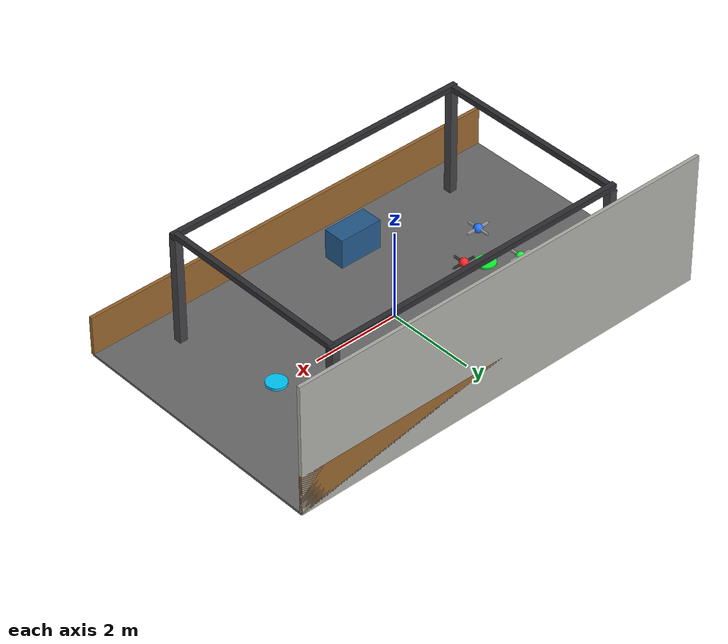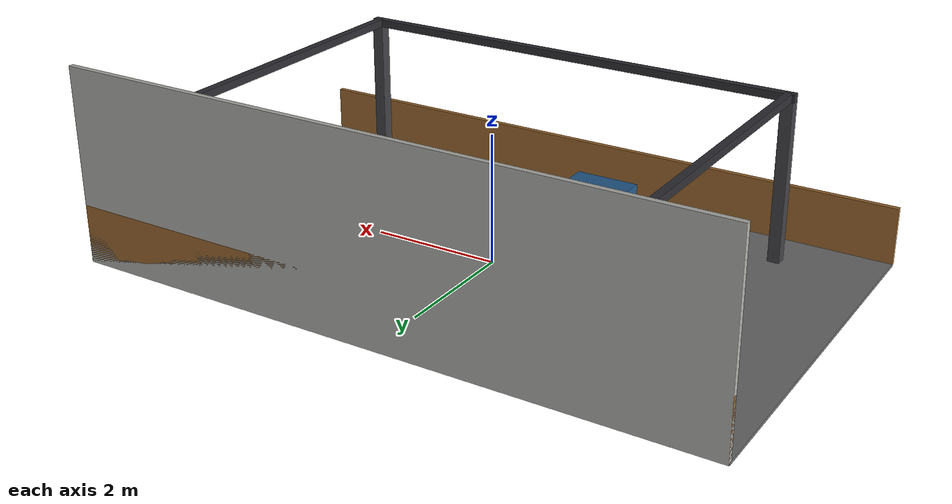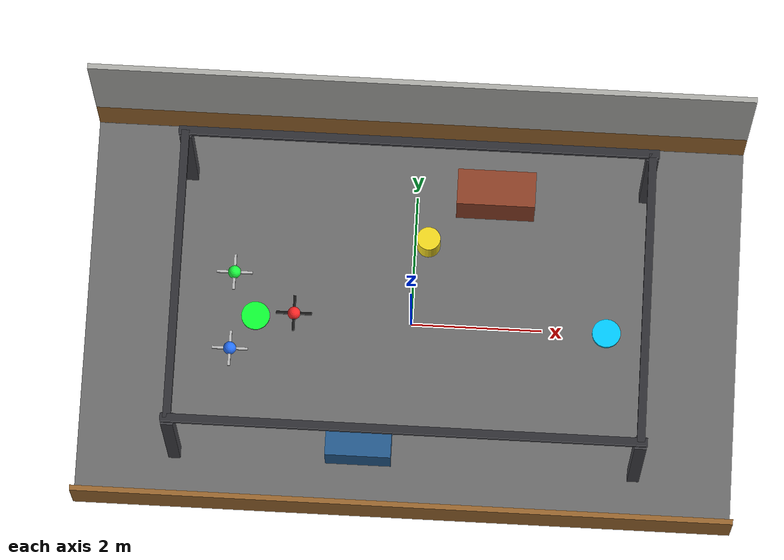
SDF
<?xml version="1.0" ?>
<sdf version="1.9">
  <world name="industrial_uav_validation_world">

    <physics name="1ms" type="ignored">
      <max_step_size>0.001</max_step_size>
      <real_time_factor>1.0</real_time_factor>
    </physics>

    <plugin filename="gz-sim-physics-system" name="gz::sim::systems::Physics"/>
    <plugin filename="gz-sim-user-commands-system" name="gz::sim::systems::UserCommands"/>
    <plugin filename="gz-sim-scene-broadcaster-system" name="gz::sim::systems::SceneBroadcaster"/>

    <!-- Lighting -->
    <light type="directional" name="sun">
      <cast_shadows>true</cast_shadows>
      <pose>0 0 12 0 0 0</pose>
      <diffuse>0.95 0.95 0.95 1</diffuse>
      <specular>0.25 0.25 0.25 1</specular>
      <direction>-0.4 0.3 -0.9</direction>
    </light>

    <light type="point" name="lab_light_1">
      <pose>-2.5 0 5 0 0 0</pose>
      <diffuse>0.9 0.9 0.85 1</diffuse>
      <specular>0.2 0.2 0.2 1</specular>
      <attenuation>
        <range>12</range>
        <constant>0.8</constant>
        <linear>0.05</linear>
        <quadratic>0.01</quadratic>
      </attenuation>
    </light>

    <light type="point" name="lab_light_2">
      <pose>3 0 5 0 0 0</pose>
      <diffuse>0.9 0.9 0.85 1</diffuse>
      <specular>0.2 0.2 0.2 1</specular>
      <attenuation>
        <range>12</range>
        <constant>0.8</constant>
        <linear>0.05</linear>
        <quadratic>0.01</quadratic>
      </attenuation>
    </light>

    <!-- Ground -->
    <model name="floor">
      <static>true</static>
      <link name="link">
        <collision name="collision">
          <geometry>
            <box>
              <size>10 6 0.05</size>
            </box>
          </geometry>
        </collision>
        <visual name="visual">
          <geometry>
            <box>
              <size>10 6 0.05</size>
            </box>
          </geometry>
          <material>
            <ambient>0.38 0.38 0.38 1</ambient>
            <diffuse>0.42 0.42 0.42 1</diffuse>
            <specular>0.08 0.08 0.08 1</specular>
          </material>
        </visual>
      </link>
    </model>

    <!-- Back wall -->
    <model name="back_wall">
      <static>true</static>
      <pose>0 3.0 1.5 0 0 0</pose>
      <link name="link">
        <visual name="visual">
          <geometry>
            <box>
              <size>10 0.08 3.0</size>
            </box>
          </geometry>
          <material>
            <ambient>0.62 0.62 0.60 1</ambient>
            <diffuse>0.68 0.68 0.66 1</diffuse>
          </material>
        </visual>
      </link>
    </model>

    <!-- Side low walls / boundaries -->
    <model name="left_boundary">
      <static>true</static>
      <pose>0 -3.0 0.45 0 0 0</pose>
      <link name="link">
        <visual name="visual">
          <geometry>
            <box>
              <size>10 0.08 0.9</size>
            </box>
          </geometry>
          <material>
            <ambient>0.55 0.36 0.16 1</ambient>
            <diffuse>0.60 0.40 0.18 1</diffuse>
          </material>
        </visual>
      </link>
    </model>

    <model name="right_boundary">
      <static>true</static>
      <pose>0 3.0 0.45 0 0 0</pose>
      <link name="link">
        <visual name="visual">
          <geometry>
            <box>
              <size>10 0.08 0.9</size>
            </box>
          </geometry>
          <material>
            <ambient>0.55 0.36 0.16 1</ambient>
            <diffuse>0.60 0.40 0.18 1</diffuse>
          </material>
        </visual>
      </link>
    </model>

    <!-- Industrial pillars -->
    <model name="pillar_1">
      <static>true</static>
      <pose>-3.5 -2.2 1.25 0 0 0</pose>
      <link name="link">
        <visual name="visual">
          <geometry>
            <box>
              <size>0.18 0.18 2.5</size>
            </box>
          </geometry>
          <material>
            <ambient>0.2 0.2 0.22 1</ambient>
            <diffuse>0.25 0.25 0.27 1</diffuse>
          </material>
        </visual>
      </link>
    </model>

    <model name="pillar_2">
      <static>true</static>
      <pose>-3.5 2.2 1.25 0 0 0</pose>
      <link name="link">
        <visual name="visual">
          <geometry>
            <box>
              <size>0.18 0.18 2.5</size>
            </box>
          </geometry>
          <material>
            <ambient>0.2 0.2 0.22 1</ambient>
            <diffuse>0.25 0.25 0.27 1</diffuse>
          </material>
        </visual>
      </link>
    </model>

    <model name="pillar_3">
      <static>true</static>
      <pose>3.5 -2.2 1.25 0 0 0</pose>
      <link name="link">
        <visual name="visual">
          <geometry>
            <box>
              <size>0.18 0.18 2.5</size>
            </box>
          </geometry>
          <material>
            <ambient>0.2 0.2 0.22 1</ambient>
            <diffuse>0.25 0.25 0.27 1</diffuse>
          </material>
        </visual>
      </link>
    </model>

    <model name="pillar_4">
      <static>true</static>
      <pose>3.5 2.2 1.25 0 0 0</pose>
      <link name="link">
        <visual name="visual">
          <geometry>
            <box>
              <size>0.18 0.18 2.5</size>
            </box>
          </geometry>
          <material>
            <ambient>0.2 0.2 0.22 1</ambient>
            <diffuse>0.25 0.25 0.27 1</diffuse>
          </material>
        </visual>
      </link>
    </model>

    <!-- Overhead frame -->
    <model name="overhead_beam_front">
      <static>true</static>
      <pose>0 -2.2 2.55 0 0 0</pose>
      <link name="link">
        <visual name="visual">
          <geometry>
            <box>
              <size>7.2 0.12 0.12</size>
            </box>
          </geometry>
          <material>
            <ambient>0.12 0.12 0.13 1</ambient>
            <diffuse>0.18 0.18 0.20 1</diffuse>
          </material>
        </visual>
      </link>
    </model>

    <model name="overhead_beam_back">
      <static>true</static>
      <pose>0 2.2 2.55 0 0 0</pose>
      <link name="link">
        <visual name="visual">
          <geometry>
            <box>
              <size>7.2 0.12 0.12</size>
            </box>
          </geometry>
          <material>
            <ambient>0.12 0.12 0.13 1</ambient>
            <diffuse>0.18 0.18 0.20 1</diffuse>
          </material>
        </visual>
      </link>
    </model>

    <model name="overhead_beam_left">
      <static>true</static>
      <pose>-3.5 0 2.55 0 0 0</pose>
      <link name="link">
        <visual name="visual">
          <geometry>
            <box>
              <size>0.12 4.4 0.12</size>
            </box>
          </geometry>
          <material>
            <ambient>0.12 0.12 0.13 1</ambient>
            <diffuse>0.18 0.18 0.20 1</diffuse>
          </material>
        </visual>
      </link>
    </model>

    <model name="overhead_beam_right">
      <static>true</static>
      <pose>3.5 0 2.55 0 0 0</pose>
      <link name="link">
        <visual name="visual">
          <geometry>
            <box>
              <size>0.12 4.4 0.12</size>
            </box>
          </geometry>
          <material>
            <ambient>0.12 0.12 0.13 1</ambient>
            <diffuse>0.18 0.18 0.20 1</diffuse>
          </material>
        </visual>
      </link>
    </model>

    <!-- Equipment / obstacle-like objects away from main flight path -->
    <model name="equipment_box_left">
      <static>true</static>
      <pose>-0.7 -2.0 0.35 0 0 0</pose>
      <link name="link">
        <visual name="visual">
          <geometry>
            <box>
              <size>1.0 0.5 0.7</size>
            </box>
          </geometry>
          <material>
            <ambient>0.12 0.28 0.45 1</ambient>
            <diffuse>0.14 0.35 0.55 1</diffuse>
          </material>
        </visual>
      </link>
    </model>

    <model name="equipment_box_right">
      <static>true</static>
      <pose>1.2 2.0 0.45 0 0 0</pose>
      <link name="link">
        <visual name="visual">
          <geometry>
            <box>
              <size>1.2 0.55 0.9</size>
            </box>
          </geometry>
          <material>
            <ambient>0.45 0.20 0.12 1</ambient>
            <diffuse>0.55 0.25 0.15 1</diffuse>
          </material>
        </visual>
      </link>
    </model>

    <model name="central_low_obstacle_placeholder">
      <static>true</static>
      <pose>0.2 1.25 0.25 0 0 0</pose>
      <link name="link">
        <visual name="visual">
          <geometry>
            <cylinder>
              <radius>0.18</radius>
              <length>0.50</length>
            </cylinder>
          </geometry>
          <material>
            <ambient>0.85 0.75 0.10 1</ambient>
            <diffuse>0.95 0.85 0.12 1</diffuse>
          </material>
        </visual>
      </link>
    </model>

    <!-- Start marker -->
    <model name="start_marker">
      <static>true</static>
      <pose>-2.4 0 0.04 0 0 0</pose>
      <link name="link">
        <visual name="visual">
          <geometry>
            <cylinder>
              <radius>0.22</radius>
              <length>0.04</length>
            </cylinder>
          </geometry>
          <material>
            <ambient>0.05 1.0 0.20 1</ambient>
            <diffuse>0.05 1.0 0.20 1</diffuse>
          </material>
        </visual>
      </link>
    </model>

    <!-- Goal marker -->
    <model name="goal_marker">
      <static>true</static>
      <pose>3.0 0 0.05 0 0 0</pose>
      <link name="link">
        <visual name="visual">
          <geometry>
            <cylinder>
              <radius>0.22</radius>
              <length>0.06</length>
            </cylinder>
          </geometry>
          <material>
            <ambient>0.0 0.80 1.0 1</ambient>
            <diffuse>0.0 0.80 1.0 1</diffuse>
          </material>
        </visual>
      </link>
    </model>

    <!-- UAV 1 proxy -->
    <model name="uav1">
      <static>false</static>
      <pose>-1.8 0.0 0.35 0 0 0</pose>
      <link name="body">
        <inertial>
          <mass>0.05</mass>
          <inertia>
            <ixx>0.0001</ixx>
            <iyy>0.0001</iyy>
            <izz>0.0001</izz>
          </inertia>
        </inertial>

        <collision name="collision">
          <geometry>
            <sphere>
              <radius>0.10</radius>
            </sphere>
          </geometry>
        </collision>

        <visual name="center">
          <geometry>
            <sphere>
              <radius>0.10</radius>
            </sphere>
          </geometry>
          <material>
            <ambient>1.0 0.10 0.10 1</ambient>
            <diffuse>1.0 0.15 0.15 1</diffuse>
          </material>
        </visual>

        <visual name="arm_x">
          <geometry>
            <box>
              <size>0.55 0.04 0.04</size>
            </box>
          </geometry>
          <material>
            <ambient>0.05 0.05 0.05 1</ambient>
            <diffuse>0.08 0.08 0.08 1</diffuse>
          </material>
        </visual>

        <visual name="arm_y">
          <geometry>
            <box>
              <size>0.04 0.55 0.04</size>
            </box>
          </geometry>
          <material>
            <ambient>0.05 0.05 0.05 1</ambient>
            <diffuse>0.08 0.08 0.08 1</diffuse>
          </material>
        </visual>
      </link>
    </model>

    <!-- UAV 2 proxy -->
    <model name="uav2">
      <static>false</static>
      <pose>-2.75 0.6 0.35 0 0 0</pose>
      <link name="body">
        <inertial>
          <mass>0.05</mass>
          <inertia>
            <ixx>0.0001</ixx>
            <iyy>0.0001</iyy>
            <izz>0.0001</izz>
          </inertia>
        </inertial>

        <collision name="collision">
          <geometry>
            <sphere>
              <radius>0.10</radius>
            </sphere>
          </geometry>
        </collision>

        <visual name="center">
          <geometry>
            <sphere>
              <radius>0.10</radius>
            </sphere>
          </geometry>
          <material>
            <ambient>0.05 1.0 0.20 1</ambient>
            <diffuse>0.10 1.0 0.25 1</diffuse>
          </material>
        </visual>

        <visual name="arm_x">
          <geometry>
            <box>
              <size>0.55 0.04 0.04</size>
            </box>
          </geometry>
        </visual>

        <visual name="arm_y">
          <geometry>
            <box>
              <size>0.04 0.55 0.04</size>
            </box>
          </geometry>
        </visual>
      </link>
    </model>

    <!-- UAV 3 proxy -->
    <model name="uav3">
      <static>false</static>
      <pose>-2.75 -0.6 0.35 0 0 0</pose>
      <link name="body">
        <inertial>
          <mass>0.05</mass>
          <inertia>
            <ixx>0.0001</ixx>
            <iyy>0.0001</iyy>
            <izz>0.0001</izz>
          </inertia>
        </inertial>

        <collision name="collision">
          <geometry>
            <sphere>
              <radius>0.10</radius>
            </sphere>
          </geometry>
        </collision>

        <visual name="center">
          <geometry>
            <sphere>
              <radius>0.10</radius>
            </sphere>
          </geometry>
          <material>
            <ambient>0.10 0.35 1.0 1</ambient>
            <diffuse>0.15 0.45 1.0 1</diffuse>
          </material>
        </visual>

        <visual name="arm_x">
          <geometry>
            <box>
              <size>0.55 0.04 0.04</size>
            </box>
          </geometry>
        </visual>

        <visual name="arm_y">
          <geometry>
            <box>
              <size>0.04 0.55 0.04</size>
            </box>
          </geometry>
        </visual>
      </link>
    </model>

  </world>
</sdf>
